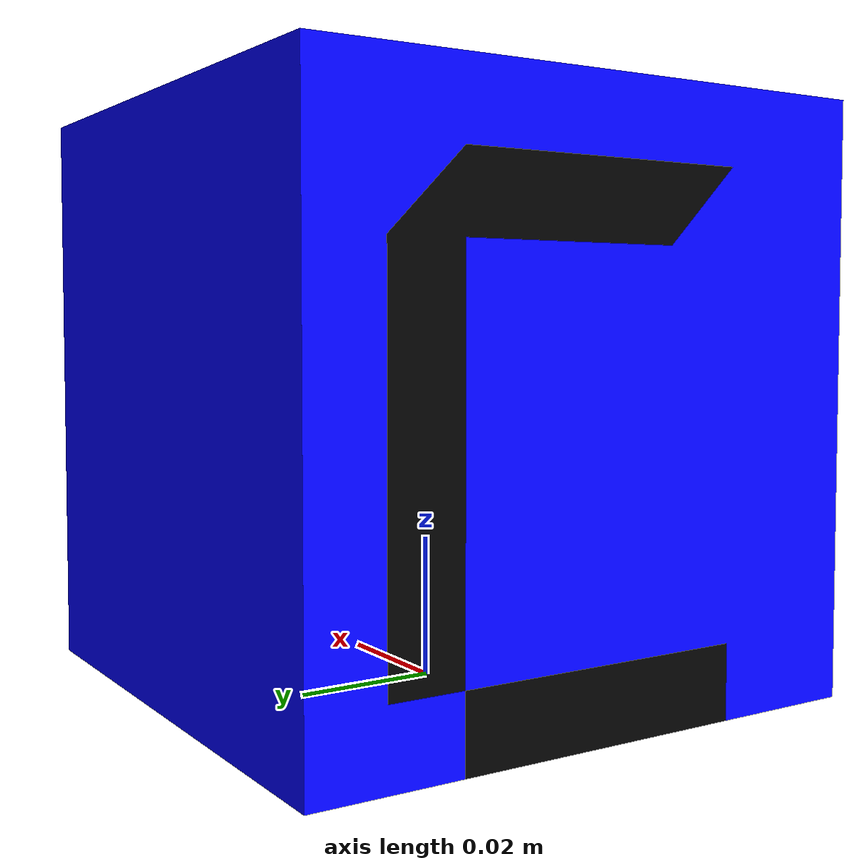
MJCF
<mujoco model="cubeC">
  <default>
    <default class="visual">
      <geom group="2" type="mesh" contype="0" conaffinity="0"/>
    </default>
    <default class="collision">
      <geom group="3" type="box"/>
    </default>
  </default>
  <asset>
    <material name="Material" specular="1.0" shininess="0.09607843099999999" rgba="1.000000 1.000000 1.000000 1.000000"/>
    <material name="Material.001" specular="0.0" shininess="0.09607843099999999" rgba="0.000000 0.000000 0.000000 1.000000"/>
    <mesh file="cubeC_0.obj"/>
    <mesh file="cubeC_1.obj"/>
  </asset>
  <worldbody>
    <body name="cubeC">
      <geom mesh="cubeC_0" material="Material.001" class="visual"/>
      <geom mesh="cubeC_1" material="Material" class="visual" rgba="0 0 1 1"/>

      <geom class="collision" pos="0.00027 -0.000078 0.040286" size="0.04 0.04 0.04" name="cubeC"/>
    </body>
  </worldbody>
</mujoco>
